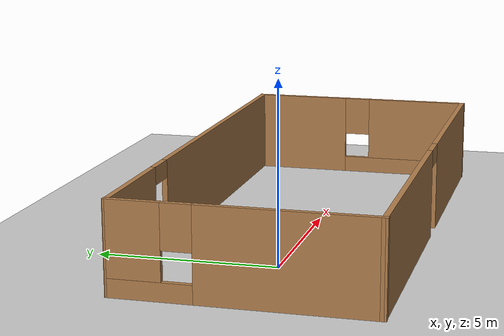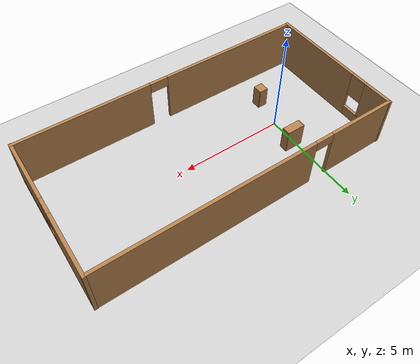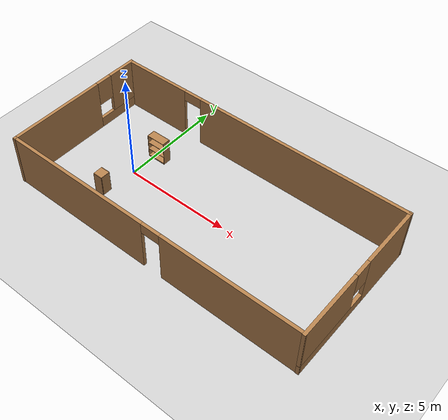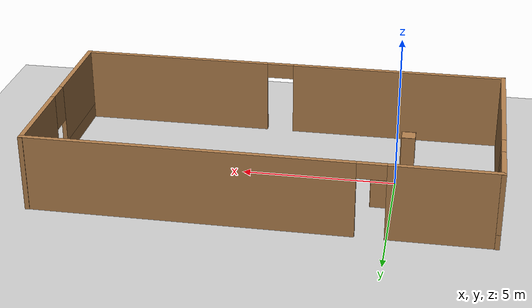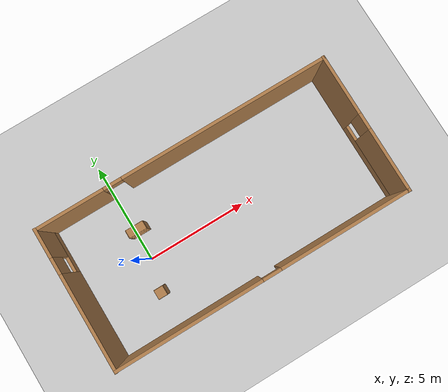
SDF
<sdf version="1.7">
 <world name="default">
  <light name="sun" type="directional">
   <pose>0 0 10 0 -0 0</pose>
   <diffuse>0.8 0.8 0.8 1</diffuse>
   <specular>0.2 0.2 0.2 1</specular>
   <attenuation>
    <range>1000</range>
    <constant>0.9</constant>
    <linear>0.01</linear>
    <quadratic>0.001</quadratic>
   </attenuation>
   <direction>-0.5 0.1 -0.9</direction>
   <spot><inner_angle>0</inner_angle><outer_angle>0</outer_angle><falloff>0</falloff></spot>
  </light>
  <model name="ground_plane">
   <static>1</static>
   <link name="link">
    <collision name="collision">
     <geometry><plane><normal>0 0 1</normal><size>100 100</size></plane></geometry>
     <surface>
      <contact><collide_bitmask>65535</collide_bitmask></contact>
      <friction><ode><mu>100</mu><mu2>50</mu2></ode></friction>
     </surface>
    </collision>
    <visual name="visual">
     <cast_shadows>0</cast_shadows>
     <geometry><plane><normal>0 0 1</normal><size>100 100</size></plane></geometry>
     <material>
      <script><uri>file://media/materials/scripts/gazebo.material</uri><name>Gazebo/Grey</name></script>
     </material>
    </visual>
   </link>
  </model>
  <gravity>0 0 -9.8</gravity>
  <magnetic_field>6e-06 2.3e-05 -4.2e-05</magnetic_field>
  <atmosphere type="adiabatic"/>
  <physics type="ode">
   <max_step_size>0.001</max_step_size>
   <real_time_factor>1</real_time_factor>
   <real_time_update_rate>1000</real_time_update_rate>
  </physics>
  <scene><ambient>0.4 0.4 0.4 1</ambient><background>0.7 0.7 0.7 1</background><shadows>1</shadows></scene>
  <audio><device>default</device></audio>
  <spherical_coordinates>
   <surface_model>EARTH_WGS84</surface_model>
   <latitude_deg>0</latitude_deg>
   <longitude_deg>0</longitude_deg>
   <elevation>0</elevation>
   <heading_deg>0</heading_deg>
  </spherical_coordinates>
  <model name="test">
   <pose>3.9562 0.032885 0 0 -0 0</pose>
   <link name="Wall_0">
    <pose>-7.22152 0.007604 0 0 -0 1.56635</pose>
    <visual name="Wall_0_Visual_0">
     <pose>-1.13306 0 1.25 0 -0 0</pose>
     <geometry><box><size>4.71774 0.15 2.5</size></box></geometry>
     <material>
      <script><uri>file://media/materials/scripts/gazebo.material</uri><name>Gazebo/Wood</name></script>
      <ambient>1 1 1 1</ambient>
     </material>
     <meta><layer>0</layer></meta>
    </visual>
    <collision name="Wall_0_Collision_0">
     <geometry><box><size>4.71774 0.15 2.5</size></box></geometry>
     <pose>-1.13306 0 1.25 0 -0 0</pose>
    </collision>
    <visual name="Wall_0_Visual_1">
     <pose>2.35887 0 0.25 0 -0 0</pose>
     <geometry><box><size>2.26613 0.15 0.5</size></box></geometry>
     <material>
      <script><uri>file://media/materials/scripts/gazebo.material</uri><name>Gazebo/Wood</name></script>
      <ambient>1 1 1 1</ambient>
     </material>
     <meta><layer>0</layer></meta>
    </visual>
    <collision name="Wall_0_Collision_1">
     <geometry><box><size>2.26613 0.15 0.5</size></box></geometry>
     <pose>2.35887 0 0.25 0 -0 0</pose>
    </collision>
    <visual name="Wall_0_Visual_2">
     <pose>2.75887 0 1.5 0 -0 0</pose>
     <geometry><box><size>1.46613 0.15 2</size></box></geometry>
     <material>
      <script><uri>file://media/materials/scripts/gazebo.material</uri><name>Gazebo/Wood</name></script>
      <ambient>1 1 1 1</ambient>
     </material>
     <meta><layer>0</layer></meta>
    </visual>
    <collision name="Wall_0_Collision_2">
     <geometry><box><size>1.46613 0.15 2</size></box></geometry>
     <pose>2.75887 0 1.5 0 -0 0</pose>
    </collision>
    <visual name="Wall_0_Visual_3">
     <pose>1.6258 0 1.9 0 -0 0</pose>
     <geometry><box><size>0.8 0.15 1.2</size></box></geometry>
     <material>
      <script><uri>file://media/materials/scripts/gazebo.material</uri><name>Gazebo/Wood</name></script>
      <ambient>1 1 1 1</ambient>
     </material>
     <meta><layer>0</layer></meta>
    </visual>
    <collision name="Wall_0_Collision_3">
     <geometry><box><size>0.8 0.15 1.2</size></box></geometry>
     <pose>1.6258 0 1.9 0 -0 0</pose>
    </collision>
   </link>
   <link name="Wall_10">
    <pose>7.22152 -0.007604 0 0 -0 -1.57525</pose>
    <visual name="Wall_10_Visual_0">
     <pose>-1.99192 0 1.25 0 -0 0</pose>
     <geometry><box><size>3.00002 0.15 2.5</size></box></geometry>
     <material>
      <script><uri>file://media/materials/scripts/gazebo.material</uri><name>Gazebo/Wood</name></script>
      <ambient>1 1 1 1</ambient>
     </material>
     <meta><layer>0</layer></meta>
    </visual>
    <collision name="Wall_10_Collision_0">
     <geometry><box><size>3.00002 0.15 2.5</size></box></geometry>
     <pose>-1.99192 0 1.25 0 -0 0</pose>
    </collision>
    <visual name="Wall_10_Visual_1">
     <pose>1.50001 0 0.25 0 -0 0</pose>
     <geometry><box><size>3.98385 0.15 0.5</size></box></geometry>
     <material>
      <script><uri>file://media/materials/scripts/gazebo.material</uri><name>Gazebo/Wood</name></script>
      <ambient>1 1 1 1</ambient>
     </material>
     <meta><layer>0</layer></meta>
    </visual>
    <collision name="Wall_10_Collision_1">
     <geometry><box><size>3.98385 0.15 0.5</size></box></geometry>
     <pose>1.50001 0 0.25 0 -0 0</pose>
    </collision>
    <visual name="Wall_10_Visual_2">
     <pose>1.90001 0 1.5 0 -0 0</pose>
     <geometry><box><size>3.18385 0.15 2</size></box></geometry>
     <material>
      <script><uri>file://media/materials/scripts/gazebo.material</uri><name>Gazebo/Wood</name></script>
      <ambient>1 1 1 1</ambient>
     </material>
     <meta><layer>0</layer></meta>
    </visual>
    <collision name="Wall_10_Collision_2">
     <geometry><box><size>3.18385 0.15 2</size></box></geometry>
     <pose>1.90001 0 1.5 0 -0 0</pose>
    </collision>
    <visual name="Wall_10_Visual_3">
     <pose>-0.091917 0 1.9 0 -0 0</pose>
     <geometry><box><size>0.8 0.15 1.2</size></box></geometry>
     <material>
      <script><uri>file://media/materials/scripts/gazebo.material</uri><name>Gazebo/Wood</name></script>
      <ambient>1 1 1 1</ambient>
     </material>
     <meta><layer>0</layer></meta>
    </visual>
    <collision name="Wall_10_Collision_3">
     <geometry><box><size>0.8 0.15 1.2</size></box></geometry>
     <pose>-0.091917 0 1.9 0 -0 0</pose>
    </collision>
   </link>
   <link name="Wall_11">
    <pose>-0.015209 -3.40169 0 0 -0 3.14054</pose>
    <visual name="Wall_11_Visual_0">
     <pose>-4.05476 0 1.25 0 -0 0</pose>
     <geometry><box><size>6.48354 0.15 2.5</size></box></geometry>
     <material>
      <script><uri>file://media/materials/scripts/gazebo.material</uri><name>Gazebo/Wood</name></script>
      <ambient>1 1 1 1</ambient>
     </material>
     <meta><layer>0</layer></meta>
    </visual>
    <collision name="Wall_11_Collision_0">
     <geometry><box><size>6.48354 0.15 2.5</size></box></geometry>
     <pose>-4.05476 0 1.25 0 -0 0</pose>
    </collision>
    <visual name="Wall_11_Visual_1">
     <pose>3.69177 0 1.25 0 -0 0</pose>
     <geometry><box><size>7.20951 0.15 2.5</size></box></geometry>
     <material>
      <script><uri>file://media/materials/scripts/gazebo.material</uri><name>Gazebo/Wood</name></script>
      <ambient>1 1 1 1</ambient>
     </material>
     <meta><layer>0</layer></meta>
    </visual>
    <collision name="Wall_11_Collision_1">
     <geometry><box><size>7.20951 0.15 2.5</size></box></geometry>
     <pose>3.69177 0 1.25 0 -0 0</pose>
    </collision>
    <visual name="Wall_11_Visual_2">
     <pose>-0.362988 0 2.25 0 -0 0</pose>
     <geometry><box><size>0.9 0.15 0.5</size></box></geometry>
     <material>
      <script><uri>file://media/materials/scripts/gazebo.material</uri><name>Gazebo/Wood</name></script>
      <ambient>1 1 1 1</ambient>
     </material>
     <meta><layer>0</layer></meta>
    </visual>
    <collision name="Wall_11_Collision_2">
     <geometry><box><size>0.9 0.15 0.5</size></box></geometry>
     <pose>-0.362988 0 2.25 0 -0 0</pose>
    </collision>
   </link>
   <link name="Wall_9">
    <pose>0.015209 3.40169 0 0 -0 -0.001053</pose>
    <visual name="Wall_9_Visual_0">
     <pose>-5.5977 0 1.25 0 -0 0</pose>
     <geometry><box><size>3.39765 0.15 2.5</size></box></geometry>
     <material>
      <script><uri>file://media/materials/scripts/gazebo.material</uri><name>Gazebo/Wood</name></script>
      <ambient>1 1 1 1</ambient>
     </material>
     <meta><layer>0</layer></meta>
    </visual>
    <collision name="Wall_9_Collision_0">
     <geometry><box><size>3.39765 0.15 2.5</size></box></geometry>
     <pose>-5.5977 0 1.25 0 -0 0</pose>
    </collision>
    <visual name="Wall_9_Visual_1">
     <pose>2.14883 0 1.25 0 -0 0</pose>
     <geometry><box><size>10.2954 0.15 2.5</size></box></geometry>
     <material>
      <script><uri>file://media/materials/scripts/gazebo.material</uri><name>Gazebo/Wood</name></script>
      <ambient>1 1 1 1</ambient>
     </material>
     <meta><layer>0</layer></meta>
    </visual>
    <collision name="Wall_9_Collision_1">
     <geometry><box><size>10.2954 0.15 2.5</size></box></geometry>
     <pose>2.14883 0 1.25 0 -0 0</pose>
    </collision>
    <visual name="Wall_9_Visual_2">
     <pose>-3.44887 0 2.25 0 -0 0</pose>
     <geometry><box><size>0.9 0.15 0.5</size></box></geometry>
     <material>
      <script><uri>file://media/materials/scripts/gazebo.material</uri><name>Gazebo/Wood</name></script>
      <ambient>1 1 1 1</ambient>
     </material>
     <meta><layer>0</layer></meta>
    </visual>
    <collision name="Wall_9_Collision_2">
     <geometry><box><size>0.9 0.15 0.5</size></box></geometry>
     <pose>-3.44887 0 2.25 0 -0 0</pose>
    </collision>
   </link>
   <static>1</static>
  </model>
  <model name="cabinet">
   <static>1</static>
   <link name="cabinet_bottom_plate">
    <inertial>
     <pose>0 0 -1 0 -0 0</pose>
     <inertia><ixx>2.05</ixx><ixy>0</ixy><ixz>0</ixz><iyy>2.05</iyy><iyz>0</iyz><izz>2.05</izz></inertia>
     <mass>25</mass>
    </inertial>
    <collision name="cabinet_bottom_plate_geom">
     <pose>0 0 0.01 0 -0 0</pose>
     <geometry><box><size>0.45 0.45 0.02</size></box></geometry>
    </collision>
    <visual name="cabinet_bottom_plate_geom_visual">
     <pose>0 0 0.01 0 -0 0</pose>
     <geometry><box><size>0.45 0.45 0.02</size></box></geometry>
     <material>
      <script><uri>file://media/materials/scripts/gazebo.material</uri><name>Gazebo/Wood</name></script>
     </material>
    </visual>
    <collision name="cabinet_bottom_plate_geom_cabinet_back_plate">
     <pose>0.235 0 0.51 0 -0 0</pose>
     <geometry><box><size>0.02 0.45 1.02</size></box></geometry>
    </collision>
    <visual name="cabinet_bottom_plate_geom_cabinet_back_plate_visual">
     <pose>0.235 0 0.51 0 -0 0</pose>
     <geometry><box><size>0.02 0.45 1.02</size></box></geometry>
     <material>
      <script><uri>file://media/materials/scripts/gazebo.material</uri><name>Gazebo/Wood</name></script>
     </material>
    </visual>
    <collision name="cabinet_bottom_plate_geom_cabinet_left_plate">
     <pose>0 0.235 0.51 0 -0 0</pose>
     <geometry><box><size>0.45 0.02 1.02</size></box></geometry>
    </collision>
    <visual name="cabinet_bottom_plate_geom_cabinet_left_plate_visual">
     <pose>0 0.235 0.51 0 -0 0</pose>
     <geometry><box><size>0.45 0.02 1.02</size></box></geometry>
     <material>
      <script><uri>file://media/materials/scripts/gazebo.material</uri><name>Gazebo/Wood</name></script>
     </material>
    </visual>
    <collision name="cabinet_bottom_plate_geom_cabinet_middle_plate">
     <pose>0 0 0.51 0 -0 0</pose>
     <geometry><box><size>0.45 0.45 0.02</size></box></geometry>
    </collision>
    <visual name="cabinet_bottom_plate_geom_cabinet_middle_plate_visual">
     <pose>0 0 0.51 0 -0 0</pose>
     <geometry><box><size>0.45 0.45 0.02</size></box></geometry>
     <material>
      <script><uri>file://media/materials/scripts/gazebo.material</uri><name>Gazebo/Wood</name></script>
     </material>
    </visual>
    <collision name="cabinet_bottom_plate_geom_cabinet_right_plate">
     <pose>0 -0.235 0.51 0 -0 0</pose>
     <geometry><box><size>0.45 0.02 1.02</size></box></geometry>
    </collision>
    <visual name="cabinet_bottom_plate_geom_cabinet_right_plate_visual">
     <pose>0 -0.235 0.51 0 -0 0</pose>
     <geometry><box><size>0.45 0.02 1.02</size></box></geometry>
     <material>
      <script><uri>file://media/materials/scripts/gazebo.material</uri><name>Gazebo/Wood</name></script>
     </material>
    </visual>
    <collision name="cabinet_bottom_plate_geom_cabinet_top_plate">
     <pose>0 0 1.01 0 -0 0</pose>
     <geometry><box><size>0.45 0.45 0.02</size></box></geometry>
    </collision>
    <visual name="cabinet_bottom_plate_geom_cabinet_top_plate_visual">
     <pose>0 0 1.01 0 -0 0</pose>
     <geometry><box><size>0.45 0.45 0.02</size></box></geometry>
     <material>
      <script><uri>file://media/materials/scripts/gazebo.material</uri><name>Gazebo/Wood</name></script>
     </material>
    </visual>
   </link>
   <pose>-0.297227 -1.56949 0 0 -0 0</pose>
  </model>
  <model name="bookshelf">
   <static>1</static>
   <link name="link">
    <inertial><mass>1</mass></inertial>
    <collision name="back">
     <pose>0 0.005 0.6 0 -0 0</pose>
     <geometry><box><size>0.9 0.01 1.2</size></box></geometry>
    </collision>
    <visual name="visual1">
     <pose>0 0.005 0.6 0 -0 0</pose>
     <geometry><box><size>0.9 0.01 1.2</size></box></geometry>
     <material>
      <script><uri>file://media/materials/scripts/gazebo.material</uri><name>Gazebo/Wood</name></script>
     </material>
    </visual>
    <collision name="left_side">
     <pose>0.45 -0.195 0.6 0 -0 0</pose>
     <geometry><box><size>0.02 0.4 1.2</size></box></geometry>
    </collision>
    <visual name="visual2">
     <pose>0.45 -0.195 0.6 0 -0 0</pose>
     <geometry><box><size>0.02 0.4 1.2</size></box></geometry>
     <material>
      <script><uri>file://media/materials/scripts/gazebo.material</uri><name>Gazebo/Wood</name></script>
     </material>
    </visual>
    <collision name="right_side">
     <pose>-0.45 -0.195 0.6 0 -0 0</pose>
     <geometry><box><size>0.02 0.4 1.2</size></box></geometry>
    </collision>
    <visual name="visual3">
     <pose>-0.45 -0.195 0.6 0 -0 0</pose>
     <geometry><box><size>0.02 0.4 1.2</size></box></geometry>
     <material>
      <script><uri>file://media/materials/scripts/gazebo.material</uri><name>Gazebo/Wood</name></script>
     </material>
    </visual>
    <collision name="bottom">
     <pose>0 -0.195 0.03 0 -0 0</pose>
     <geometry><box><size>0.88 0.4 0.06</size></box></geometry>
    </collision>
    <visual name="visual4">
     <pose>0 -0.195 0.03 0 -0 0</pose>
     <geometry><box><size>0.88 0.4 0.06</size></box></geometry>
     <material>
      <script><uri>file://media/materials/scripts/gazebo.material</uri><name>Gazebo/Wood</name></script>
     </material>
    </visual>
    <collision name="top">
     <pose>0 -0.195 1.19 0 -0 0</pose>
     <geometry><box><size>0.88 0.4 0.02</size></box></geometry>
    </collision>
    <visual name="visual5">
     <pose>0 -0.195 1.19 0 -0 0</pose>
     <geometry><box><size>0.88 0.4 0.02</size></box></geometry>
     <material>
      <script><uri>file://media/materials/scripts/gazebo.material</uri><name>Gazebo/Wood</name></script>
     </material>
    </visual>
    <collision name="low_shelf">
     <pose>0 -0.195 0.43 0 -0 0</pose>
     <geometry><box><size>0.88 0.4 0.02</size></box></geometry>
    </collision>
    <visual name="visual6">
     <pose>0 -0.195 0.43 0 -0 0</pose>
     <geometry><box><size>0.88 0.4 0.02</size></box></geometry>
     <material>
      <script><uri>file://media/materials/scripts/gazebo.material</uri><name>Gazebo/Wood</name></script>
     </material>
    </visual>
    <collision name="high_shelf">
     <pose>0 -0.195 0.8 0 -0 0</pose>
     <geometry><box><size>0.88 0.4 0.02</size></box></geometry>
    </collision>
    <visual name="visual7">
     <pose>0 -0.195 0.8 0 -0 0</pose>
     <geometry><box><size>0.88 0.4 0.02</size></box></geometry>
     <material>
      <script><uri>file://media/materials/scripts/gazebo.material</uri><name>Gazebo/Wood</name></script>
     </material>
    </visual>
   </link>
   <pose>0.224217 1.6189 0 0 -0 0</pose>
  </model>
 </world>
</sdf>
